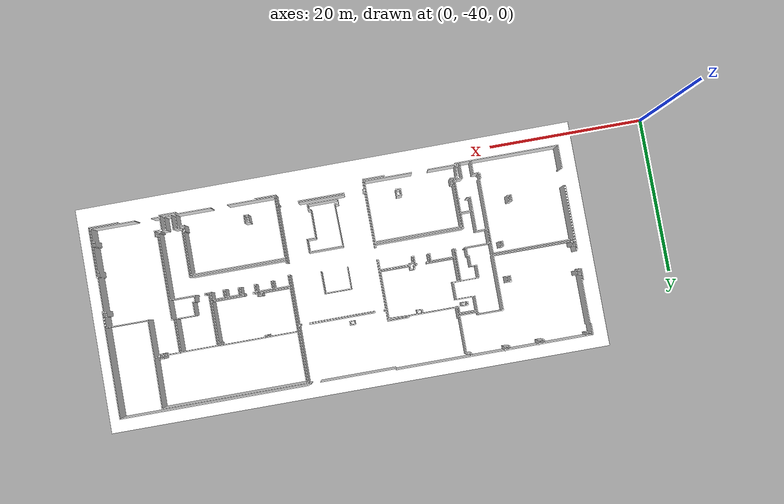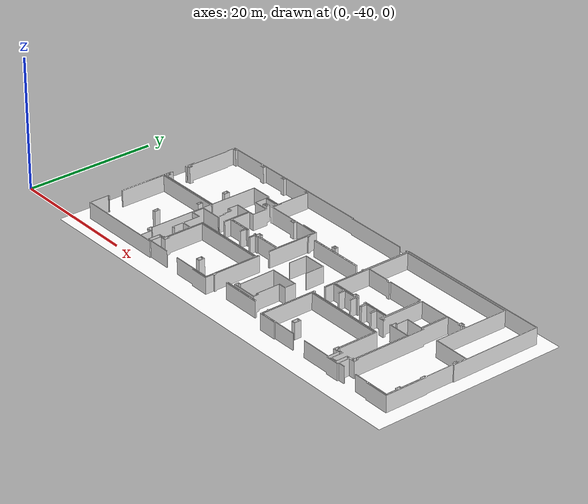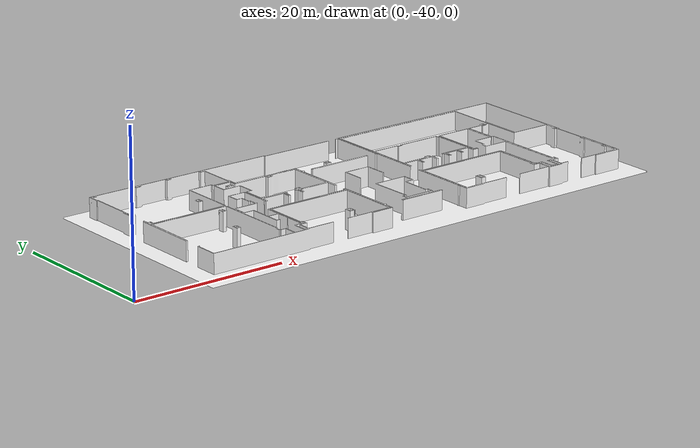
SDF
<?xml version='1.0' encoding='utf-8'?>
<sdf version="1.7">
  <model name="industrial_baixa">
    <static>true</static>
    <link name="floor_1">
      <visual name="visual">
        <geometry>
          <mesh>
            <uri>model://industrial_baixa/meshes/floor_1.obj</uri>
          </mesh>
        </geometry>
        <material>
          <diffuse>1.0 1.0 1.0</diffuse>
          <specular>0.1 0.1 0.1</specular>
          <pbr>
            <metal>
              <metalness>0.0</metalness>
              <albedo_map>model://industrial_baixa/meshes/blue_linoleum.png</albedo_map>
            </metal>
          </pbr>
          <script>
            <uri>model://industrial_baixa/meshes/</uri>
            <name>floor_1_Diffuse</name>
          </script>
        </material>
      </visual>
      <collision name="collision">
        <geometry>
          <mesh>
            <uri>model://industrial_baixa/meshes/floor_1.obj</uri>
          </mesh>
        </geometry>
        <surface>
          <contact>
            <collide_bitmask>0x01</collide_bitmask>
          </contact>
        </surface>
      </collision>
    </link>
    <link name="wall_1">
      <visual name="wall_1">
        <geometry>
          <mesh>
            <uri>model://industrial_baixa/meshes/wall_1.obj</uri>
          </mesh>
        </geometry>
        <transparency>0.0</transparency>
        <material>
          <diffuse>1.0 1.0 1.0</diffuse>
          <specular>0.1 0.1 0.1</specular>
          <pbr>
            <metal>
              <metalness>0.0</metalness>
              <albedo_map>model://industrial_baixa/meshes/default.png</albedo_map>
            </metal>
          </pbr>
          <script>
            <uri>model://industrial_baixa/meshes/</uri>
            <name>wall_1_Diffuse</name>
          </script>
        </material>
      </visual>
      <collision name="collision">
        <geometry>
          <mesh>
            <uri>model://industrial_baixa/meshes/wall_1.obj</uri>
          </mesh>
        </geometry>
        <surface>
          <contact>
            <collide_bitmask>0x01</collide_bitmask>
          </contact>
        </surface>
      </collision>
      <pose>11.729409894142757 -38.51396283925434 0 0 0 0</pose>
    </link>
  </model>
</sdf>
